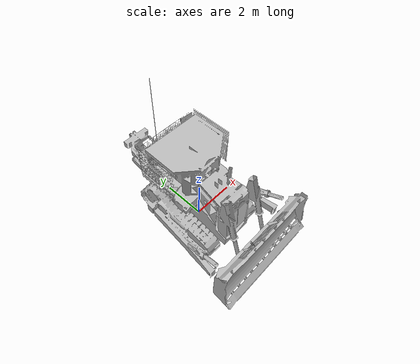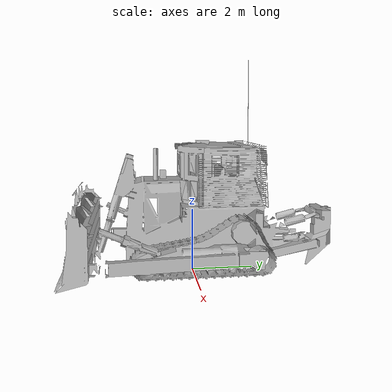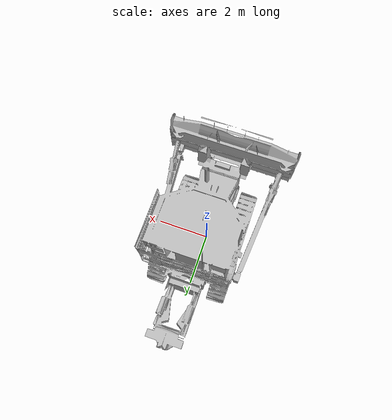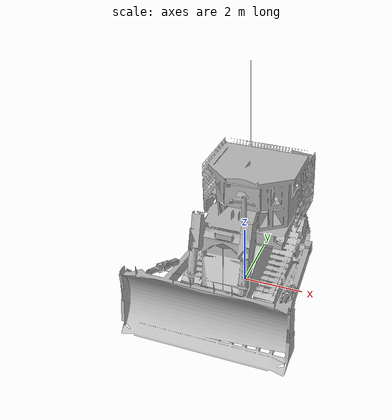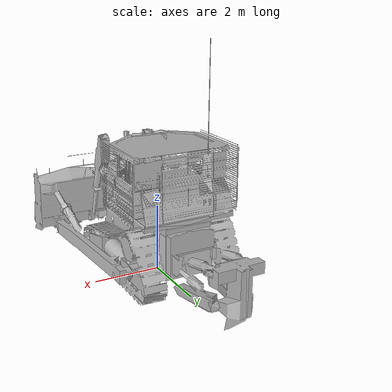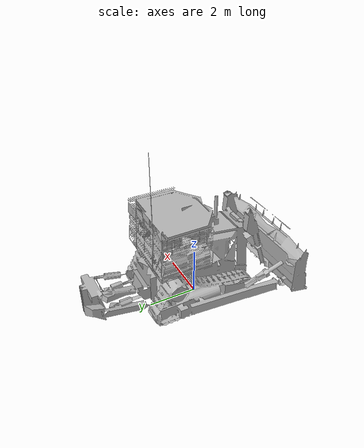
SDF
<!-- -*- mode: XML -*- -->
<?xml version="1.0"?>
<sdf version="1.4">
  <model name="d9">
    <static>true</static>
    <link name="link">
      <collision name="collision">
        <geometry>
          <mesh>
             <uri>model://d9/models/d9_collision.dae</uri>
          </mesh>
        </geometry>
      </collision>
      <visual name="visual">
         <geometry>
          <mesh>
		<uri>model://d9/models/d9_visual.dae</uri>
          </mesh>
        </geometry>
      </visual>
    </link>
  </model>
</sdf>
